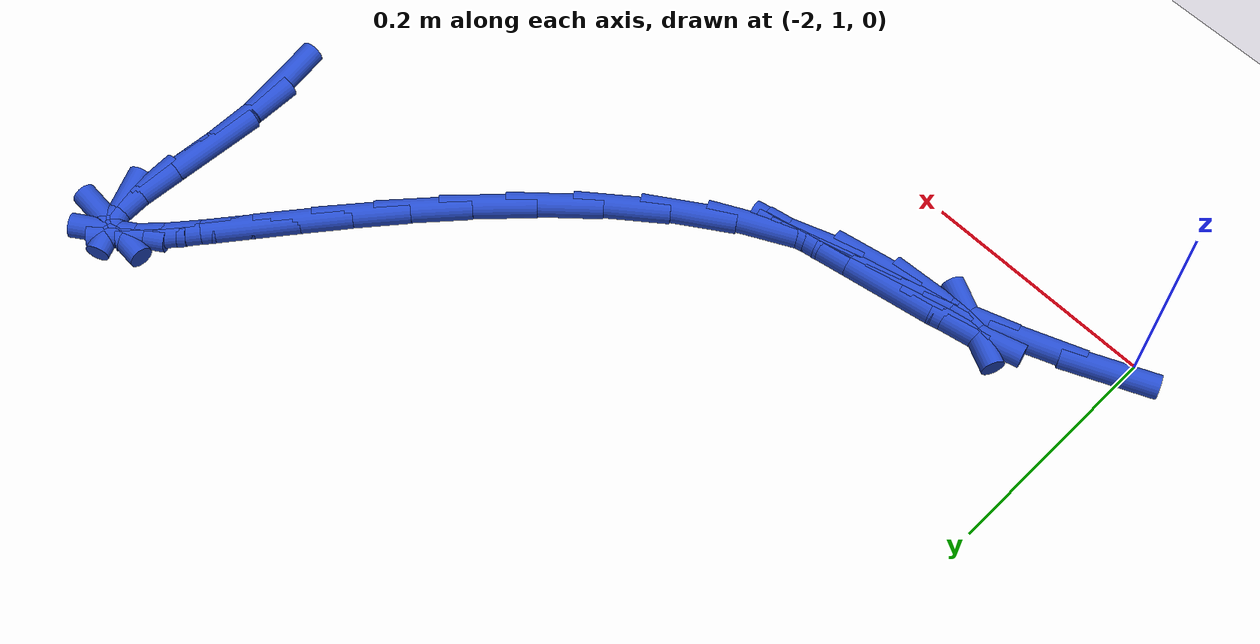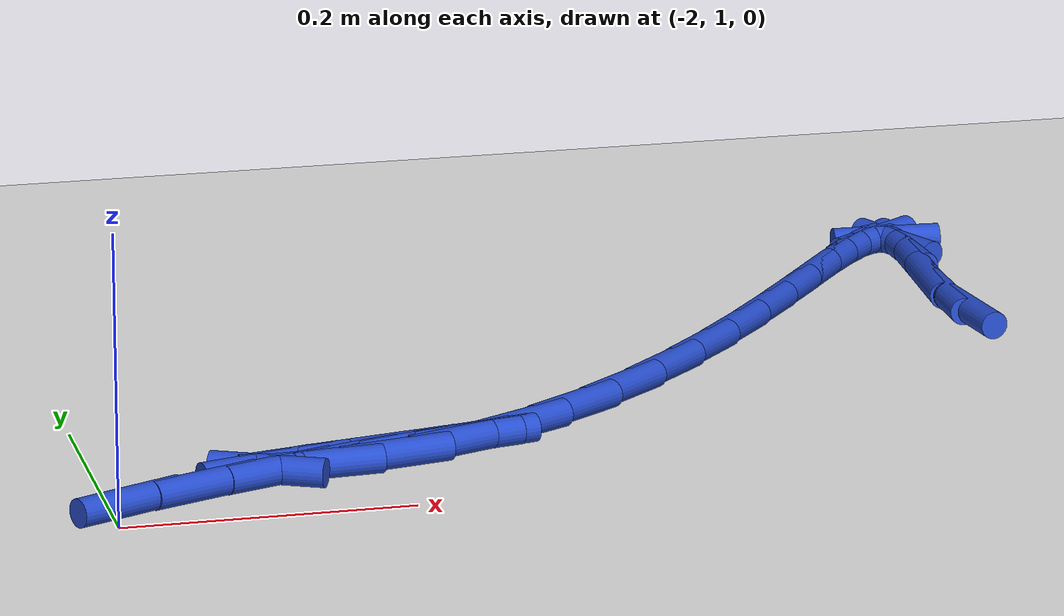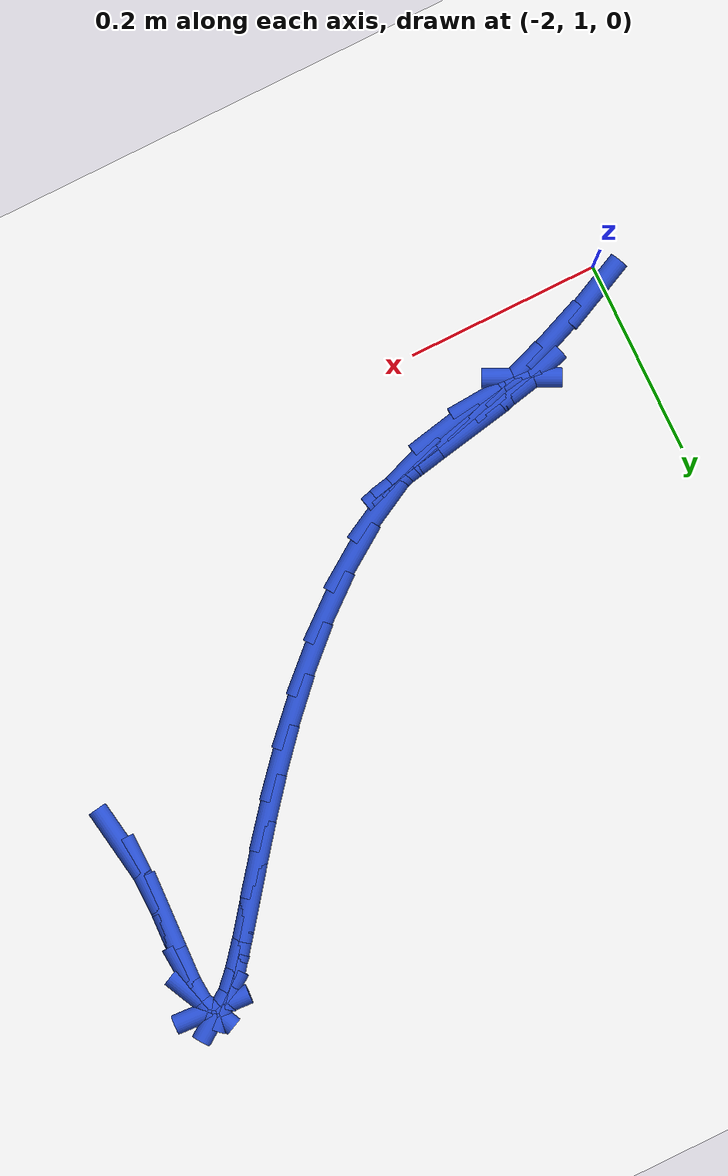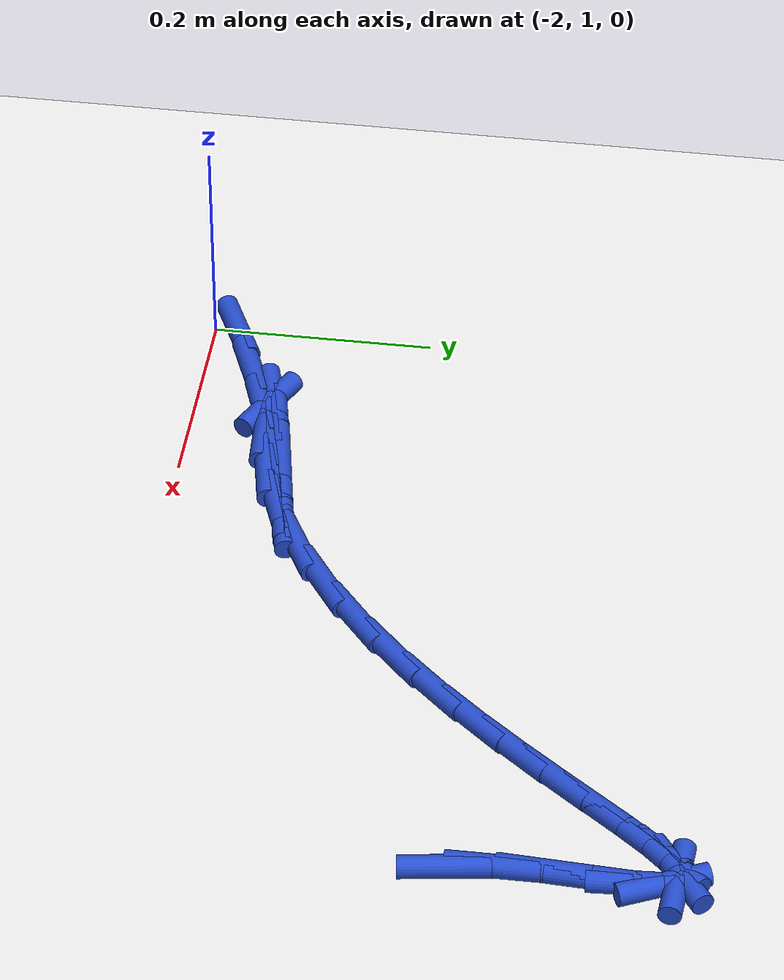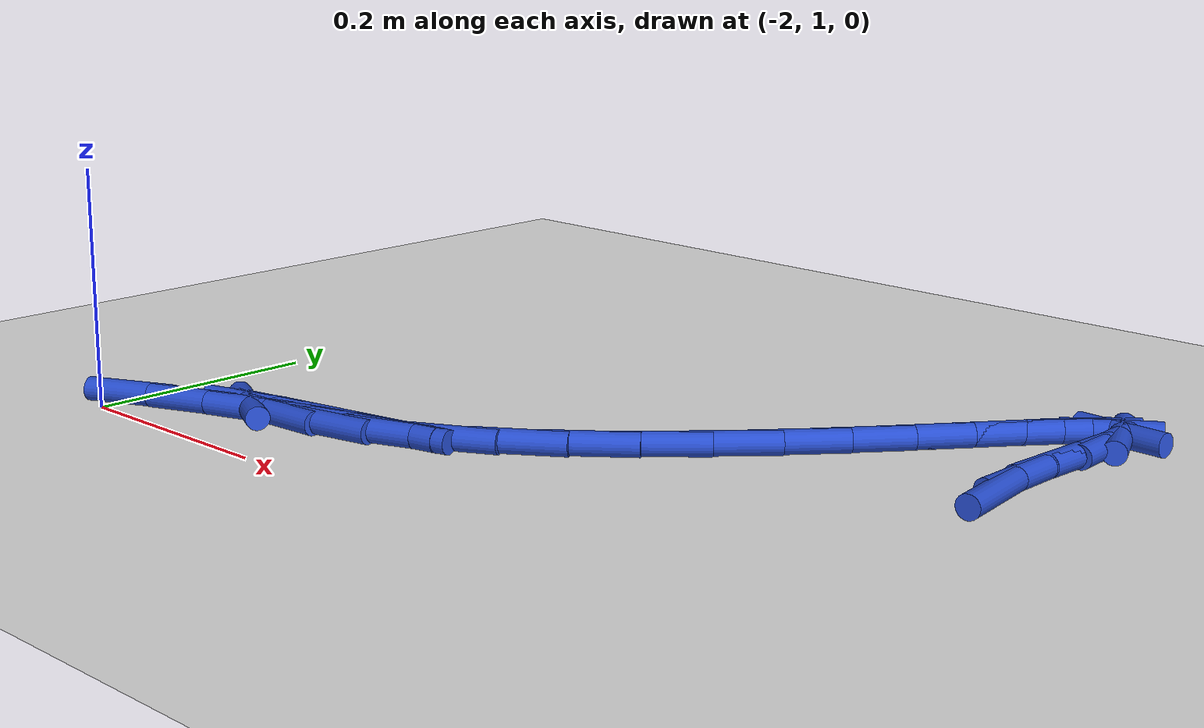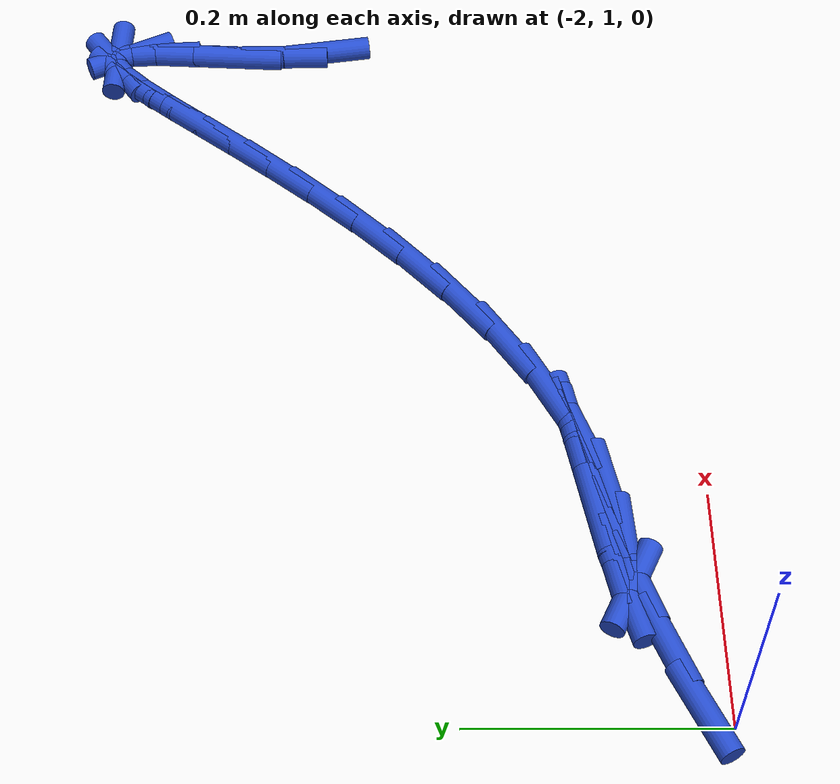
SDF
<sdf version="1.6">
 <world name="default">
  <model name="ground_plane">
   <static>1</static>
   <link name="link">
    <collision name="collision">
     <geometry><plane><normal>0 0 1</normal><size>100 100</size></plane></geometry>
     <surface><friction><ode><mu>100</mu><mu2>50</mu2></ode></friction></surface>
    </collision>
    <visual name="visual">
     <cast_shadows>0</cast_shadows>
     <geometry><plane><normal>0 0 1</normal><size>100 100</size></plane></geometry>
     <material>
      <script><uri>file://media/materials/scripts/gazebo.material</uri><name>Gazebo/WhiteGlow</name></script>
     </material>
    </visual>
   </link>
  </model>
  <model name="line">
   <link name="link_70">
    <pose>-1.3272426584791428 1.3056321649214335 0.01 0 1.57 -1.4221722611407408</pose>
    <collision name="collision">
     <geometry><cylinder><radius>0.01</radius><length>0.08</length></cylinder></geometry>
    </collision>
    <visual name="visual">
     <material>
      <script><name>Gazebo/Blue</name><uri>file://media/materials/scripts/gazebo.material</uri></script>
     </material>
     <geometry><cylinder><radius>0.01</radius><length>0.08</length></cylinder></geometry>
    </visual>
   </link>
   <link name="link_71">
    <pose>-1.332941187362738 1.3436913342587757 0.01 0 1.57 -1.5625479537765008</pose>
    <collision name="collision">
     <geometry><cylinder><radius>0.01</radius><length>0.08</length></cylinder></geometry>
    </collision>
    <visual name="visual">
     <material>
      <script><name>Gazebo/Blue</name><uri>file://media/materials/scripts/gazebo.material</uri></script>
     </material>
     <geometry><cylinder><radius>0.01</radius><length>0.08</length></cylinder></geometry>
    </visual>
   </link>
   <link name="link_72">
    <pose>-1.333286813682387 1.3855927468813718 0.01 0 1.57 1.5186144525834042</pose>
    <collision name="collision">
     <geometry><cylinder><radius>0.01</radius><length>0.08</length></cylinder></geometry>
    </collision>
    <visual name="visual">
     <material>
      <script><name>Gazebo/Blue</name><uri>file://media/materials/scripts/gazebo.material</uri></script>
     </material>
     <geometry><cylinder><radius>0.01</radius><length>0.08</length></cylinder></geometry>
    </visual>
   </link>
   <link name="link_73">
    <pose>-1.3311668923484643 1.426181492904086 0.01 0 1.57 1.5210701822027162</pose>
    <collision name="collision">
     <geometry><cylinder><radius>0.01</radius><length>0.08</length></cylinder></geometry>
    </collision>
    <visual name="visual">
     <material>
      <script><name>Gazebo/Blue</name><uri>file://media/materials/scripts/gazebo.material</uri></script>
     </material>
     <geometry><cylinder><radius>0.01</radius><length>0.08</length></cylinder></geometry>
    </visual>
   </link>
   <link name="link_74">
    <pose>-1.329468778271342 1.4603026624417823 0.01 0 1.57 -1.510640885980615</pose>
    <collision name="collision">
     <geometry><cylinder><radius>0.01</radius><length>0.08</length></cylinder></geometry>
    </collision>
    <visual name="visual">
     <material>
      <script><name>Gazebo/Blue</name><uri>file://media/materials/scripts/gazebo.material</uri></script>
     </material>
     <geometry><cylinder><radius>0.01</radius><length>0.08</length></cylinder></geometry>
    </visual>
   </link>
   <link name="link_75">
    <pose>-1.3308528758285034 1.4832835865529956 0.01 0 1.57 -1.1288993493002832</pose>
    <collision name="collision">
     <geometry><cylinder><radius>0.01</radius><length>0.08</length></cylinder></geometry>
    </collision>
    <visual name="visual">
     <material>
      <script><name>Gazebo/Blue</name><uri>file://media/materials/scripts/gazebo.material</uri></script>
     </material>
     <geometry><cylinder><radius>0.01</radius><length>0.08</length></cylinder></geometry>
    </visual>
   </link>
   <link name="link_76">
    <pose>-1.3361167406860448 1.4944099122740109 0.01 0 1.57 -0.055157109083162556</pose>
    <collision name="collision">
     <geometry><cylinder><radius>0.01</radius><length>0.08</length></cylinder></geometry>
    </collision>
    <visual name="visual">
     <material>
      <script><name>Gazebo/Blue</name><uri>file://media/materials/scripts/gazebo.material</uri></script>
     </material>
     <geometry><cylinder><radius>0.01</radius><length>0.08</length></cylinder></geometry>
    </visual>
   </link>
   <link name="link_77">
    <pose>-1.3451444278885754 1.4949083589802752 0.01 0 1.57 0.6118300588537406</pose>
    <collision name="collision">
     <geometry><cylinder><radius>0.01</radius><length>0.08</length></cylinder></geometry>
    </collision>
    <visual name="visual">
     <material>
      <script><name>Gazebo/Blue</name><uri>file://media/materials/scripts/gazebo.material</uri></script>
     </material>
     <geometry><cylinder><radius>0.01</radius><length>0.08</length></cylinder></geometry>
    </visual>
   </link>
   <link name="link_78">
    <pose>-1.3578137046530663 1.486019006879197 0.01 0 1.57 0.8109281811021423</pose>
    <collision name="collision">
     <geometry><cylinder><radius>0.01</radius><length>0.08</length></cylinder></geometry>
    </collision>
    <visual name="visual">
     <material>
      <script><name>Gazebo/Blue</name><uri>file://media/materials/scripts/gazebo.material</uri></script>
     </material>
     <geometry><cylinder><radius>0.01</radius><length>0.08</length></cylinder></geometry>
    </visual>
   </link>
   <link name="link_79">
    <pose>-1.3740023381964899 1.4689819361781848 0.01 0 1.57 0.8852011206308746</pose>
    <collision name="collision">
     <geometry><cylinder><radius>0.01</radius><length>0.08</length></cylinder></geometry>
    </collision>
    <visual name="visual">
     <material>
      <script><name>Gazebo/Blue</name><uri>file://media/materials/scripts/gazebo.material</uri></script>
     </material>
     <geometry><cylinder><radius>0.01</radius><length>0.08</length></cylinder></geometry>
    </visual>
   </link>
   <link name="link_80">
    <pose>-1.3935880957358178 1.4450372270846465 0.01 0 1.57 0.9133637073268904</pose>
    <collision name="collision">
     <geometry><cylinder><radius>0.01</radius><length>0.08</length></cylinder></geometry>
    </collision>
    <visual name="visual">
     <material>
      <script><name>Gazebo/Blue</name><uri>file://media/materials/scripts/gazebo.material</uri></script>
     </material>
     <geometry><cylinder><radius>0.01</radius><length>0.08</length></cylinder></geometry>
    </visual>
   </link>
   <link name="link_81">
    <pose>-1.4164487444880218 1.4154249598059903 0.01 0 1.57 0.9182665050433156</pose>
    <collision name="collision">
     <geometry><cylinder><radius>0.01</radius><length>0.08</length></cylinder></geometry>
    </collision>
    <visual name="visual">
     <material>
      <script><name>Gazebo/Blue</name><uri>file://media/materials/scripts/gazebo.material</uri></script>
     </material>
     <geometry><cylinder><radius>0.01</radius><length>0.08</length></cylinder></geometry>
    </visual>
   </link>
   <link name="link_82">
    <pose>-1.4424620516700741 1.3813852145496246 0.01 0 1.57 0.9082604616428729</pose>
    <collision name="collision">
     <geometry><cylinder><radius>0.01</radius><length>0.08</length></cylinder></geometry>
    </collision>
    <visual name="visual">
     <material>
      <script><name>Gazebo/Blue</name><uri>file://media/materials/scripts/gazebo.material</uri></script>
     </material>
     <geometry><cylinder><radius>0.01</radius><length>0.08</length></cylinder></geometry>
    </visual>
   </link>
   <link name="link_83">
    <pose>-1.471505784498946 1.3441580715229582 0.01 0 1.57 0.8865963672248832</pose>
    <collision name="collision">
     <geometry><cylinder><radius>0.01</radius><length>0.08</length></cylinder></geometry>
    </collision>
    <visual name="visual">
     <material>
      <script><name>Gazebo/Blue</name><uri>file://media/materials/scripts/gazebo.material</uri></script>
     </material>
     <geometry><cylinder><radius>0.01</radius><length>0.08</length></cylinder></geometry>
    </visual>
   </link>
   <link name="link_84">
    <pose>-1.5034577101916093 1.3049836109333983 0.01 0 1.57 0.8542230950189289</pose>
    <collision name="collision">
     <geometry><cylinder><radius>0.01</radius><length>0.08</length></cylinder></geometry>
    </collision>
    <visual name="visual">
     <material>
      <script><name>Gazebo/Blue</name><uri>file://media/materials/scripts/gazebo.material</uri></script>
     </material>
     <geometry><cylinder><radius>0.01</radius><length>0.08</length></cylinder></geometry>
    </visual>
   </link>
   <link name="link_85">
    <pose>-1.5381955959650355 1.2651019129883545 0.01 0 1.57 0.8107637985795519</pose>
    <collision name="collision">
     <geometry><cylinder><radius>0.01</radius><length>0.08</length></cylinder></geometry>
    </collision>
    <visual name="visual">
     <material>
      <script><name>Gazebo/Blue</name><uri>file://media/materials/scripts/gazebo.material</uri></script>
     </material>
     <geometry><cylinder><radius>0.01</radius><length>0.08</length></cylinder></geometry>
    </visual>
   </link>
   <link name="link_86">
    <pose>-1.5755972090361974 1.225753057895234 0.01 0 1.57 0.7548709511675574</pose>
    <collision name="collision">
     <geometry><cylinder><radius>0.01</radius><length>0.08</length></cylinder></geometry>
    </collision>
    <visual name="visual">
     <material>
      <script><name>Gazebo/Blue</name><uri>file://media/materials/scripts/gazebo.material</uri></script>
     </material>
     <geometry><cylinder><radius>0.01</radius><length>0.08</length></cylinder></geometry>
    </visual>
   </link>
   <link name="link_87">
    <pose>-1.615540316622066 1.1881771258614449 0.01 0 1.57 0.6843536619720875</pose>
    <collision name="collision">
     <geometry><cylinder><radius>0.01</radius><length>0.08</length></cylinder></geometry>
    </collision>
    <visual name="visual">
     <material>
      <script><name>Gazebo/Blue</name><uri>file://media/materials/scripts/gazebo.material</uri></script>
     </material>
     <geometry><cylinder><radius>0.01</radius><length>0.08</length></cylinder></geometry>
    </visual>
   </link>
   <link name="link_88">
    <pose>-1.6579026859396135 1.1536141970943958 0.01 0 1.57 0.5962796850738908</pose>
    <collision name="collision">
     <geometry><cylinder><radius>0.01</radius><length>0.08</length></cylinder></geometry>
    </collision>
    <visual name="visual">
     <material>
      <script><name>Gazebo/Blue</name><uri>file://media/materials/scripts/gazebo.material</uri></script>
     </material>
     <geometry><cylinder><radius>0.01</radius><length>0.08</length></cylinder></geometry>
    </visual>
   </link>
   <link name="link_89">
    <pose>-1.702562084205812 1.1233043518014953 0.01 0 1.57 0.4872678692801643</pose>
    <collision name="collision">
     <geometry><cylinder><radius>0.01</radius><length>0.08</length></cylinder></geometry>
    </collision>
    <visual name="visual">
     <material>
      <script><name>Gazebo/Blue</name><uri>file://media/materials/scripts/gazebo.material</uri></script>
     </material>
     <geometry><cylinder><radius>0.01</radius><length>0.08</length></cylinder></geometry>
    </visual>
   </link>
   <link name="link_90">
    <pose>-1.749396278637632 1.0984876701901514 0.01 0 1.57 0.35429602441682984</pose>
    <collision name="collision">
     <geometry><cylinder><radius>0.01</radius><length>0.08</length></cylinder></geometry>
    </collision>
    <visual name="visual">
     <material>
      <script><name>Gazebo/Blue</name><uri>file://media/materials/scripts/gazebo.material</uri></script>
     </material>
     <geometry><cylinder><radius>0.01</radius><length>0.08</length></cylinder></geometry>
    </visual>
   </link>
   <link name="link_91">
    <pose>-1.7982830364520468 1.0804042324677725 0.01 0 1.57 0.20041979330474585</pose>
    <collision name="collision">
     <geometry><cylinder><radius>0.01</radius><length>0.08</length></cylinder></geometry>
    </collision>
    <visual name="visual">
     <material>
      <script><name>Gazebo/Blue</name><uri>file://media/materials/scripts/gazebo.material</uri></script>
     </material>
     <geometry><cylinder><radius>0.01</radius><length>0.08</length></cylinder></geometry>
    </visual>
   </link>
   <link name="link_92">
    <pose>-1.8484506434000674 1.0702128278041654 0.01 0 1.57 0.06491210099593295</pose>
    <collision name="collision">
     <geometry><cylinder><radius>0.01</radius><length>0.08</length></cylinder></geometry>
    </collision>
    <visual name="visual">
     <material>
      <script><name>Gazebo/Blue</name><uri>file://media/materials/scripts/gazebo.material</uri></script>
     </material>
     <geometry><cylinder><radius>0.01</radius><length>0.08</length></cylinder></geometry>
    </visual>
   </link>
   <link name="link_93">
    <pose>-1.8878026754473227 1.0676548109122075 0.01 0 1.57 -0.44980605327724066</pose>
    <collision name="collision">
     <geometry><cylinder><radius>0.01</radius><length>0.08</length></cylinder></geometry>
    </collision>
    <visual name="visual">
     <material>
      <script><name>Gazebo/Blue</name><uri>file://media/materials/scripts/gazebo.material</uri></script>
     </material>
     <geometry><cylinder><radius>0.01</radius><length>0.08</length></cylinder></geometry>
    </visual>
   </link>
   <link name="link_94">
    <pose>-1.8952537421171192 1.071252304263147 0.01 0 1.57 0.2736690052731287</pose>
    <collision name="collision">
     <geometry><cylinder><radius>0.01</radius><length>0.08</length></cylinder></geometry>
    </collision>
    <visual name="visual">
     <material>
      <script><name>Gazebo/Blue</name><uri>file://media/materials/scripts/gazebo.material</uri></script>
     </material>
     <geometry><cylinder><radius>0.01</radius><length>0.08</length></cylinder></geometry>
    </visual>
   </link>
   <link name="link_95">
    <pose>-1.86745159232943 1.0790567069408321 0.01 0 1.57 0.20455761272580128</pose>
    <collision name="collision">
     <geometry><cylinder><radius>0.01</radius><length>0.08</length></cylinder></geometry>
    </collision>
    <visual name="visual">
     <material>
      <script><name>Gazebo/Blue</name><uri>file://media/materials/scripts/gazebo.material</uri></script>
     </material>
     <geometry><cylinder><radius>0.01</radius><length>0.08</length></cylinder></geometry>
    </visual>
   </link>
   <link name="link_96">
    <pose>-1.8212862478506822 1.0886341391780527 0.01 0 1.57 0.18866428271940577</pose>
    <collision name="collision">
     <geometry><cylinder><radius>0.01</radius><length>0.08</length></cylinder></geometry>
    </collision>
    <visual name="visual">
     <material>
      <script><name>Gazebo/Blue</name><uri>file://media/materials/scripts/gazebo.material</uri></script>
     </material>
     <geometry><cylinder><radius>0.01</radius><length>0.08</length></cylinder></geometry>
    </visual>
   </link>
   <link name="link_97">
    <pose>-1.7747215207545481 1.097524978657317 0.01 0 1.57 0.19158466786801534</pose>
    <collision name="collision">
     <geometry><cylinder><radius>0.01</radius><length>0.08</length></cylinder></geometry>
    </collision>
    <visual name="visual">
     <material>
      <script><name>Gazebo/Blue</name><uri>file://media/materials/scripts/gazebo.material</uri></script>
     </material>
     <geometry><cylinder><radius>0.01</radius><length>0.08</length></cylinder></geometry>
    </visual>
   </link>
   <link name="link_98">
    <pose>-1.7440596520381084 1.1034722657017655 0.01 0 1.57 0.202211148287675</pose>
    <collision name="collision">
     <geometry><cylinder><radius>0.01</radius><length>0.08</length></cylinder></geometry>
    </collision>
    <visual name="visual">
     <material>
      <script><name>Gazebo/Blue</name><uri>file://media/materials/scripts/gazebo.material</uri></script>
     </material>
     <geometry><cylinder><radius>0.01</radius><length>0.08</length></cylinder></geometry>
    </visual>
   </link>
   <link name="link_99">
    <pose>-1.7328003264053358 1.1057805747162046 0.01 0 1.57 0.22455219974083002</pose>
    <collision name="collision">
     <geometry><cylinder><radius>0.01</radius><length>0.08</length></cylinder></geometry>
    </collision>
    <visual name="visual">
     <material>
      <script><name>Gazebo/Blue</name><uri>file://media/materials/scripts/gazebo.material</uri></script>
     </material>
     <geometry><cylinder><radius>0.01</radius><length>0.08</length></cylinder></geometry>
    </visual>
   </link>
   <link name="link_100">
    <pose>-1.7384940520659127 1.1044801040856047 0.01 0 1.57 0.237212981308243</pose>
    <collision name="collision">
     <geometry><cylinder><radius>0.01</radius><length>0.08</length></cylinder></geometry>
    </collision>
    <visual name="visual">
     <material>
      <script><name>Gazebo/Blue</name><uri>file://media/materials/scripts/gazebo.material</uri></script>
     </material>
     <geometry><cylinder><radius>0.01</radius><length>0.08</length></cylinder></geometry>
    </visual>
   </link>
   <link name="link_101">
    <pose>-1.7586584439655275 1.0996050642025086 0.01 0 1.57 0.2559901492493577</pose>
    <collision name="collision">
     <geometry><cylinder><radius>0.01</radius><length>0.08</length></cylinder></geometry>
    </collision>
    <visual name="visual">
     <material>
      <script><name>Gazebo/Blue</name><uri>file://media/materials/scripts/gazebo.material</uri></script>
     </material>
     <geometry><cylinder><radius>0.01</radius><length>0.08</length></cylinder></geometry>
    </visual>
   </link>
   <link name="link_102">
    <pose>-1.790811117049869 1.0911896654594584 0.01 0 1.57 0.2787234685813926</pose>
    <collision name="collision">
     <geometry><cylinder><radius>0.01</radius><length>0.08</length></cylinder></geometry>
    </collision>
    <visual name="visual">
     <material>
      <script><name>Gazebo/Blue</name><uri>file://media/materials/scripts/gazebo.material</uri></script>
     </material>
     <geometry><cylinder><radius>0.01</radius><length>0.08</length></cylinder></geometry>
    </visual>
   </link>
   <link name="link_103">
    <pose>-1.832469686264625 1.0792681182489967 0.01 0 1.57 0.30625607670211746</pose>
    <collision name="collision">
     <geometry><cylinder><radius>0.01</radius><length>0.08</length></cylinder></geometry>
    </collision>
    <visual name="visual">
     <material>
      <script><name>Gazebo/Blue</name><uri>file://media/materials/scripts/gazebo.material</uri></script>
     </material>
     <geometry><cylinder><radius>0.01</radius><length>0.08</length></cylinder></geometry>
    </visual>
   </link>
   <link name="link_104">
    <pose>-1.8811517665554836 1.0638746329636655 0.01 0 1.57 0.34007017053372623</pose>
    <collision name="collision">
     <geometry><cylinder><radius>0.01</radius><length>0.08</length></cylinder></geometry>
    </collision>
    <visual name="visual">
     <material>
      <script><name>Gazebo/Blue</name><uri>file://media/materials/scripts/gazebo.material</uri></script>
     </material>
     <geometry><cylinder><radius>0.01</radius><length>0.08</length></cylinder></geometry>
    </visual>
   </link>
   <link name="link_105">
    <pose>-1.9343749728681328 1.045043419996007 0.01 0 1.57 0.38240664362659854</pose>
    <collision name="collision">
     <geometry><cylinder><radius>0.01</radius><length>0.08</length></cylinder></geometry>
    </collision>
    <visual name="visual">
     <material>
      <script><name>Gazebo/Blue</name><uri>file://media/materials/scripts/gazebo.material</uri></script>
     </material>
     <geometry><cylinder><radius>0.01</radius><length>0.08</length></cylinder></geometry>
    </visual>
   </link>
   <link name="link_106">
    <pose>-1.9896569201482612 1.0228086897385638 0.01 0 1.57 0.4366794847514112</pose>
    <collision name="collision">
     <geometry><cylinder><radius>0.01</radius><length>0.08</length></cylinder></geometry>
    </collision>
    <visual name="visual">
     <material>
      <script><name>Gazebo/Blue</name><uri>file://media/materials/scripts/gazebo.material</uri></script>
     </material>
     <geometry><cylinder><radius>0.01</radius><length>0.08</length></cylinder></geometry>
    </visual>
   </link>
  </model>
 </world>
</sdf>
